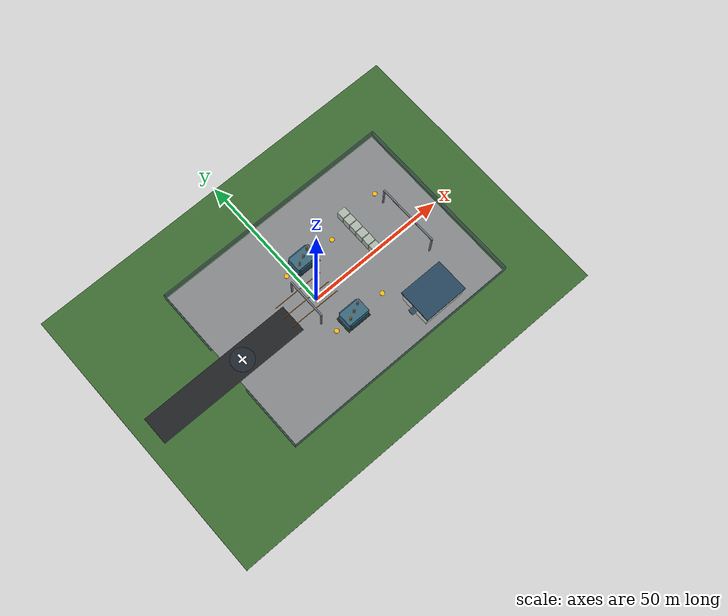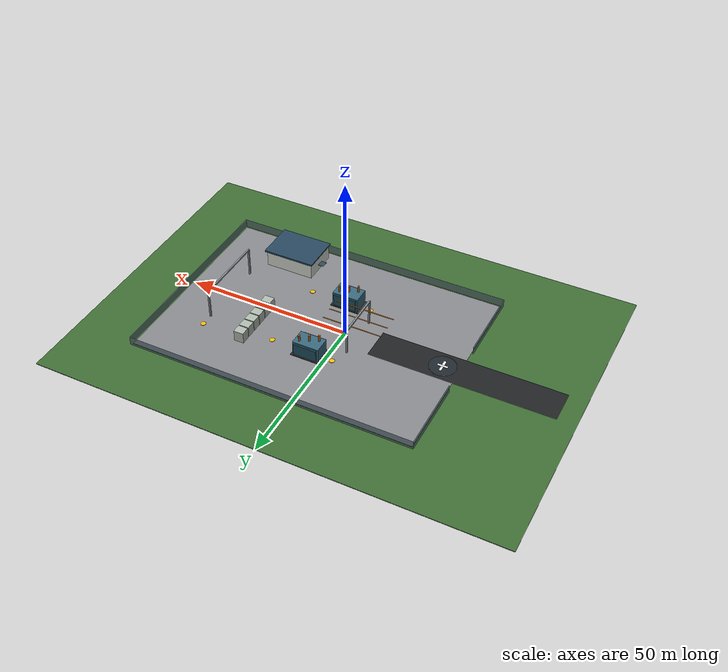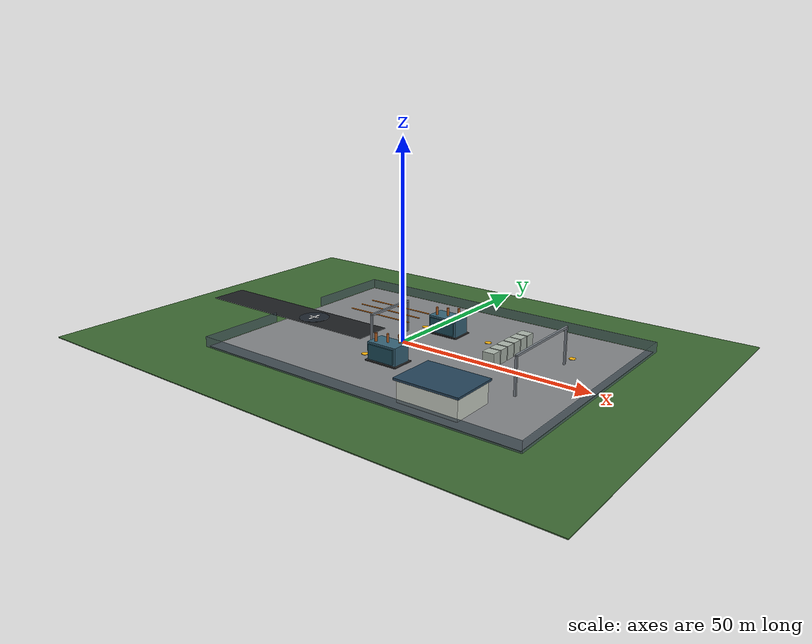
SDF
<?xml version="1.0" encoding="UTF-8"?>
<sdf version="1.9">
  <world name="energy_substation">
    <physics type="ode">
      <max_step_size>0.004</max_step_size>
      <real_time_factor>1.0</real_time_factor>
      <real_time_update_rate>250</real_time_update_rate>
    </physics>
    <gravity>0 0 -9.8</gravity>
    <magnetic_field>6e-06 2.3e-05 -4.2e-05</magnetic_field>
    <atmosphere type="adiabatic"/>
    <scene>
      <grid>true</grid>
      <ambient>0.55 0.58 0.62 1</ambient>
      <background>0.55 0.72 0.9 1</background>
      <shadows>true</shadows>
    </scene>

    <light name="sun" type="directional">
      <pose>0 0 100 0 0 0</pose>
      <cast_shadows>true</cast_shadows>
      <intensity>1.2</intensity>
      <direction>-0.4 0.25 -0.88</direction>
      <diffuse>0.95 0.93 0.85 1</diffuse>
      <specular>0.3 0.3 0.3 1</specular>
      <attenuation><range>1000</range><constant>1</constant><linear>0</linear><quadratic>0</quadratic></attenuation>
    </light>

    <model name="site_ground">
      <static>true</static>
      <link name="ground">
        <collision name="collision"><geometry><box><size>140 100 0.2</size></box></geometry></collision>
        <visual name="visual">
          <geometry><box><size>140 100 0.2</size></box></geometry>
          <material><ambient>0.18 0.32 0.16 1</ambient><diffuse>0.24 0.42 0.2 1</diffuse></material>
        </visual>
      </link>
      <pose>0 0 -0.12 0 0 0</pose>
    </model>

    <model name="substation_gravel_yard">
      <static>true</static>
      <link name="yard">
        <collision name="collision"><geometry><box><size>86 62 0.12</size></box></geometry></collision>
        <visual name="visual">
          <geometry><box><size>86 62 0.12</size></box></geometry>
          <material><ambient>0.42 0.43 0.44 1</ambient><diffuse>0.52 0.53 0.54 1</diffuse></material>
        </visual>
      </link>
      <pose>8 0 0.02 0 0 0</pose>
    </model>

    <model name="access_road">
      <static>true</static>
      <link name="road">
        <collision name="collision"><geometry><box><size>55 10 0.1</size></box></geometry></collision>
        <visual name="visual">
          <geometry><box><size>55 10 0.1</size></box></geometry>
          <material><ambient>0.08 0.09 0.1 1</ambient><diffuse>0.12 0.13 0.14 1</diffuse></material>
        </visual>
      </link>
      <pose>-37 0 0.08 0 0 0</pose>
    </model>

    <model name="landing_pad">
      <static>true</static>
      <link name="pad">
        <collision name="collision"><geometry><cylinder><radius>4</radius><length>0.12</length></cylinder></geometry></collision>
        <visual name="visual">
          <geometry><cylinder><radius>4</radius><length>0.12</length></cylinder></geometry>
          <material><ambient>0.08 0.1 0.12 1</ambient><diffuse>0.12 0.15 0.18 1</diffuse></material>
        </visual>
        <visual name="h_mark_1">
          <pose>0 0 0.07 0 0 0</pose><geometry><box><size>0.7 4 0.04</size></box></geometry>
          <material><ambient>0.95 0.95 0.95 1</ambient><diffuse>1 1 1 1</diffuse></material>
        </visual>
        <visual name="h_mark_2">
          <pose>0 0 0.08 0 0 0</pose><geometry><box><size>3 0.65 0.04</size></box></geometry>
          <material><ambient>0.95 0.95 0.95 1</ambient><diffuse>1 1 1 1</diffuse></material>
        </visual>
      </link>
      <pose>-30 0 0.12 0 0 0</pose>
    </model>

    <model name="control_building">
      <static>true</static>
      <link name="building">
        <collision name="body_collision"><geometry><box><size>15 11 5</size></box></geometry></collision>
        <visual name="body">
          <geometry><box><size>15 11 5</size></box></geometry>
          <material><ambient>0.7 0.72 0.68 1</ambient><diffuse>0.82 0.84 0.8 1</diffuse></material>
        </visual>
        <visual name="roof">
          <pose>0 0 2.75 0 0 0</pose><geometry><box><size>16 12 0.5</size></box></geometry>
          <material><ambient>0.1 0.18 0.24 1</ambient><diffuse>0.15 0.27 0.36 1</diffuse></material>
        </visual>
        <visual name="door">
          <pose>-7.51 0 -0.45 0 1.5708 0</pose><geometry><box><size>0.12 2.1 3.5</size></box></geometry>
          <material><ambient>0.12 0.18 0.22 1</ambient><diffuse>0.18 0.28 0.34 1</diffuse></material>
        </visual>
      </link>
      <pose>28 -23 2.5 0 0 0</pose>
    </model>

    <model name="transformer_A">
      <static>true</static>
      <link name="transformer">
        <collision name="tank_collision"><geometry><box><size>8 5 4.4</size></box></geometry></collision>
        <visual name="tank"><geometry><box><size>8 5 4.4</size></box></geometry><material><ambient>0.16 0.28 0.34 1</ambient><diffuse>0.22 0.4 0.48 1</diffuse></material></visual>
        <visual name="base"><pose>0 0 -2.35 0 0 0</pose><geometry><box><size>9 6 0.35</size></box></geometry><material><ambient>0.12 0.12 0.12 1</ambient><diffuse>0.18 0.18 0.18 1</diffuse></material></visual>
        <visual name="radiator_left"><pose>0 2.75 0 0 0 0</pose><geometry><box><size>7 0.45 3.6</size></box></geometry><material><ambient>0.08 0.18 0.22 1</ambient><diffuse>0.12 0.3 0.36 1</diffuse></material></visual>
        <visual name="radiator_right"><pose>0 -2.75 0 0 0 0</pose><geometry><box><size>7 0.45 3.6</size></box></geometry><material><ambient>0.08 0.18 0.22 1</ambient><diffuse>0.12 0.3 0.36 1</diffuse></material></visual>
        <visual name="bushing_1"><pose>-2.5 -1.2 3.2 0 0 0</pose><geometry><cylinder><radius>0.32</radius><length>2</length></cylinder></geometry><material><ambient>0.45 0.22 0.08 1</ambient><diffuse>0.65 0.34 0.12 1</diffuse></material></visual>
        <visual name="bushing_2"><pose>0 0 3.2 0 0 0</pose><geometry><cylinder><radius>0.32</radius><length>2</length></cylinder></geometry><material><ambient>0.45 0.22 0.08 1</ambient><diffuse>0.65 0.34 0.12 1</diffuse></material></visual>
        <visual name="bushing_3"><pose>2.5 1.2 3.2 0 0 0</pose><geometry><cylinder><radius>0.32</radius><length>2</length></cylinder></geometry><material><ambient>0.45 0.22 0.08 1</ambient><diffuse>0.65 0.34 0.12 1</diffuse></material></visual>
      </link>
      <pose>5 -12 2.5 0 0 0</pose>
    </model>

    <model name="transformer_B">
      <static>true</static>
      <link name="transformer">
        <collision name="tank_collision"><geometry><box><size>8 5 4.4</size></box></geometry></collision>
        <visual name="tank"><geometry><box><size>8 5 4.4</size></box></geometry><material><ambient>0.16 0.28 0.34 1</ambient><diffuse>0.22 0.4 0.48 1</diffuse></material></visual>
        <visual name="base"><pose>0 0 -2.35 0 0 0</pose><geometry><box><size>9 6 0.35</size></box></geometry><material><ambient>0.12 0.12 0.12 1</ambient><diffuse>0.18 0.18 0.18 1</diffuse></material></visual>
        <visual name="radiator_left"><pose>0 2.75 0 0 0 0</pose><geometry><box><size>7 0.45 3.6</size></box></geometry><material><ambient>0.08 0.18 0.22 1</ambient><diffuse>0.12 0.3 0.36 1</diffuse></material></visual>
        <visual name="radiator_right"><pose>0 -2.75 0 0 0 0</pose><geometry><box><size>7 0.45 3.6</size></box></geometry><material><ambient>0.08 0.18 0.22 1</ambient><diffuse>0.12 0.3 0.36 1</diffuse></material></visual>
        <visual name="bushing_1"><pose>-2.5 -1.2 3.2 0 0 0</pose><geometry><cylinder><radius>0.32</radius><length>2</length></cylinder></geometry><material><ambient>0.45 0.22 0.08 1</ambient><diffuse>0.65 0.34 0.12 1</diffuse></material></visual>
        <visual name="bushing_2"><pose>0 0 3.2 0 0 0</pose><geometry><cylinder><radius>0.32</radius><length>2</length></cylinder></geometry><material><ambient>0.45 0.22 0.08 1</ambient><diffuse>0.65 0.34 0.12 1</diffuse></material></visual>
        <visual name="bushing_3"><pose>2.5 1.2 3.2 0 0 0</pose><geometry><cylinder><radius>0.32</radius><length>2</length></cylinder></geometry><material><ambient>0.45 0.22 0.08 1</ambient><diffuse>0.65 0.34 0.12 1</diffuse></material></visual>
      </link>
      <pose>5 12 2.5 0 0 0</pose>
    </model>

    <model name="switchgear_row">
      <static>true</static>
      <link name="gear">
        <collision name="collision"><geometry><box><size>18 3 3.4</size></box></geometry></collision>
        <visual name="cabinet_1"><pose>-7.5 0 0 0 0 0</pose><geometry><box><size>2.7 3 3.4</size></box></geometry><material><ambient>0.55 0.58 0.55 1</ambient><diffuse>0.68 0.72 0.68 1</diffuse></material></visual>
        <visual name="cabinet_2"><pose>-4.5 0 0 0 0 0</pose><geometry><box><size>2.7 3 3.4</size></box></geometry><material><ambient>0.55 0.58 0.55 1</ambient><diffuse>0.68 0.72 0.68 1</diffuse></material></visual>
        <visual name="cabinet_3"><pose>-1.5 0 0 0 0 0</pose><geometry><box><size>2.7 3 3.4</size></box></geometry><material><ambient>0.55 0.58 0.55 1</ambient><diffuse>0.68 0.72 0.68 1</diffuse></material></visual>
        <visual name="cabinet_4"><pose>1.5 0 0 0 0 0</pose><geometry><box><size>2.7 3 3.4</size></box></geometry><material><ambient>0.55 0.58 0.55 1</ambient><diffuse>0.68 0.72 0.68 1</diffuse></material></visual>
        <visual name="cabinet_5"><pose>4.5 0 0 0 0 0</pose><geometry><box><size>2.7 3 3.4</size></box></geometry><material><ambient>0.55 0.58 0.55 1</ambient><diffuse>0.68 0.72 0.68 1</diffuse></material></visual>
        <visual name="cabinet_6"><pose>7.5 0 0 0 0 0</pose><geometry><box><size>2.7 3 3.4</size></box></geometry><material><ambient>0.55 0.58 0.55 1</ambient><diffuse>0.68 0.72 0.68 1</diffuse></material></visual>
      </link>
      <pose>25 8 1.75 0 0 1.5708</pose>
    </model>

    <model name="bus_gantry_west">
      <static>true</static>
      <link name="structure">
        <collision name="left_collision"><pose>0 -7 4 0 0 0</pose><geometry><box><size>0.5 0.5 8</size></box></geometry></collision>
        <collision name="right_collision"><pose>0 7 4 0 0 0</pose><geometry><box><size>0.5 0.5 8</size></box></geometry></collision>
        <collision name="top_collision"><pose>0 0 8 0 0 0</pose><geometry><box><size>0.5 14.5 0.5</size></box></geometry></collision>
        <visual name="left"><pose>0 -7 4 0 0 0</pose><geometry><box><size>0.5 0.5 8</size></box></geometry><material><ambient>0.3 0.32 0.34 1</ambient><diffuse>0.5 0.53 0.56 1</diffuse></material></visual>
        <visual name="right"><pose>0 7 4 0 0 0</pose><geometry><box><size>0.5 0.5 8</size></box></geometry><material><ambient>0.3 0.32 0.34 1</ambient><diffuse>0.5 0.53 0.56 1</diffuse></material></visual>
        <visual name="top"><pose>0 0 8 0 0 0</pose><geometry><box><size>0.5 14.5 0.5</size></box></geometry><material><ambient>0.3 0.32 0.34 1</ambient><diffuse>0.5 0.53 0.56 1</diffuse></material></visual>
        <visual name="bus_1"><pose>0 -4 7.2 0 1.5708 0</pose><geometry><cylinder><radius>0.12</radius><length>18</length></cylinder></geometry><material><ambient>0.65 0.3 0.05 1</ambient><diffuse>0.9 0.48 0.08 1</diffuse></material></visual>
        <visual name="bus_2"><pose>0 0 7.2 0 1.5708 0</pose><geometry><cylinder><radius>0.12</radius><length>18</length></cylinder></geometry><material><ambient>0.65 0.3 0.05 1</ambient><diffuse>0.9 0.48 0.08 1</diffuse></material></visual>
        <visual name="bus_3"><pose>0 4 7.2 0 1.5708 0</pose><geometry><cylinder><radius>0.12</radius><length>18</length></cylinder></geometry><material><ambient>0.65 0.3 0.05 1</ambient><diffuse>0.9 0.48 0.08 1</diffuse></material></visual>
      </link>
      <pose>-4 0 0 0 0 0</pose>
    </model>

    <model name="bus_gantry_east">
      <static>true</static>
      <link name="structure">
        <collision name="left_collision"><pose>0 -11 4.5 0 0 0</pose><geometry><box><size>0.5 0.5 9</size></box></geometry></collision>
        <collision name="right_collision"><pose>0 11 4.5 0 0 0</pose><geometry><box><size>0.5 0.5 9</size></box></geometry></collision>
        <collision name="top_collision"><pose>0 0 9 0 0 0</pose><geometry><box><size>0.5 22.5 0.5</size></box></geometry></collision>
        <visual name="left"><pose>0 -11 4.5 0 0 0</pose><geometry><box><size>0.5 0.5 9</size></box></geometry><material><ambient>0.3 0.32 0.34 1</ambient><diffuse>0.5 0.53 0.56 1</diffuse></material></visual>
        <visual name="right"><pose>0 11 4.5 0 0 0</pose><geometry><box><size>0.5 0.5 9</size></box></geometry><material><ambient>0.3 0.32 0.34 1</ambient><diffuse>0.5 0.53 0.56 1</diffuse></material></visual>
        <visual name="top"><pose>0 0 9 0 0 0</pose><geometry><box><size>0.5 22.5 0.5</size></box></geometry><material><ambient>0.3 0.32 0.34 1</ambient><diffuse>0.5 0.53 0.56 1</diffuse></material></visual>
      </link>
      <pose>38 0 0 0 0 0</pose>
    </model>

    <model name="perimeter_fence">
      <static>true</static>
      <link name="fence">
        <collision name="north_collision"><pose>8 31.5 1.25 0 0 0</pose><geometry><box><size>87 0.25 2.5</size></box></geometry></collision>
        <collision name="south_collision"><pose>8 -31.5 1.25 0 0 0</pose><geometry><box><size>87 0.25 2.5</size></box></geometry></collision>
        <collision name="east_collision"><pose>51.5 0 1.25 0 0 0</pose><geometry><box><size>0.25 63 2.5</size></box></geometry></collision>
        <visual name="north"><pose>8 31.5 1.25 0 0 0</pose><geometry><box><size>87 0.18 2.5</size></box></geometry><material><ambient>0.2 0.25 0.28 0.75</ambient><diffuse>0.35 0.42 0.46 0.75</diffuse></material></visual>
        <visual name="south"><pose>8 -31.5 1.25 0 0 0</pose><geometry><box><size>87 0.18 2.5</size></box></geometry><material><ambient>0.2 0.25 0.28 0.75</ambient><diffuse>0.35 0.42 0.46 0.75</diffuse></material></visual>
        <visual name="east"><pose>51.5 0 1.25 0 0 0</pose><geometry><box><size>0.18 63 2.5</size></box></geometry><material><ambient>0.2 0.25 0.28 0.75</ambient><diffuse>0.35 0.42 0.46 0.75</diffuse></material></visual>
        <visual name="west_north"><pose>-35.5 20 1.25 0 0 0</pose><geometry><box><size>0.18 23 2.5</size></box></geometry><material><ambient>0.2 0.25 0.28 0.75</ambient><diffuse>0.35 0.42 0.46 0.75</diffuse></material></visual>
        <visual name="west_south"><pose>-35.5 -20 1.25 0 0 0</pose><geometry><box><size>0.18 23 2.5</size></box></geometry><material><ambient>0.2 0.25 0.28 0.75</ambient><diffuse>0.35 0.42 0.46 0.75</diffuse></material></visual>
      </link>
    </model>

    <model name="inspection_points">
      <static>true</static>
      <link name="markers">
        <visual name="point_1"><pose>-2 -12 0.18 0 0 0</pose><geometry><cylinder><radius>0.8</radius><length>0.12</length></cylinder></geometry><material><ambient>1 0.55 0 1</ambient><diffuse>1 0.72 0.05 1</diffuse></material></visual>
        <visual name="point_2"><pose>-2 12 0.18 0 0 0</pose><geometry><cylinder><radius>0.8</radius><length>0.12</length></cylinder></geometry><material><ambient>1 0.55 0 1</ambient><diffuse>1 0.72 0.05 1</diffuse></material></visual>
        <visual name="point_3"><pose>17 -12 0.18 0 0 0</pose><geometry><cylinder><radius>0.8</radius><length>0.12</length></cylinder></geometry><material><ambient>1 0.55 0 1</ambient><diffuse>1 0.72 0.05 1</diffuse></material></visual>
        <visual name="point_4"><pose>17 12 0.18 0 0 0</pose><geometry><cylinder><radius>0.8</radius><length>0.12</length></cylinder></geometry><material><ambient>1 0.55 0 1</ambient><diffuse>1 0.72 0.05 1</diffuse></material></visual>
        <visual name="point_5"><pose>38 15 0.18 0 0 0</pose><geometry><cylinder><radius>0.8</radius><length>0.12</length></cylinder></geometry><material><ambient>1 0.55 0 1</ambient><diffuse>1 0.72 0.05 1</diffuse></material></visual>
      </link>
    </model>

    <spherical_coordinates>
      <surface_model>EARTH_WGS84</surface_model>
      <world_frame_orientation>ENU</world_frame_orientation>
      <latitude_deg>53.0793</latitude_deg>
      <longitude_deg>8.8017</longitude_deg>
      <elevation>5</elevation>
    </spherical_coordinates>
  </world>
</sdf>
